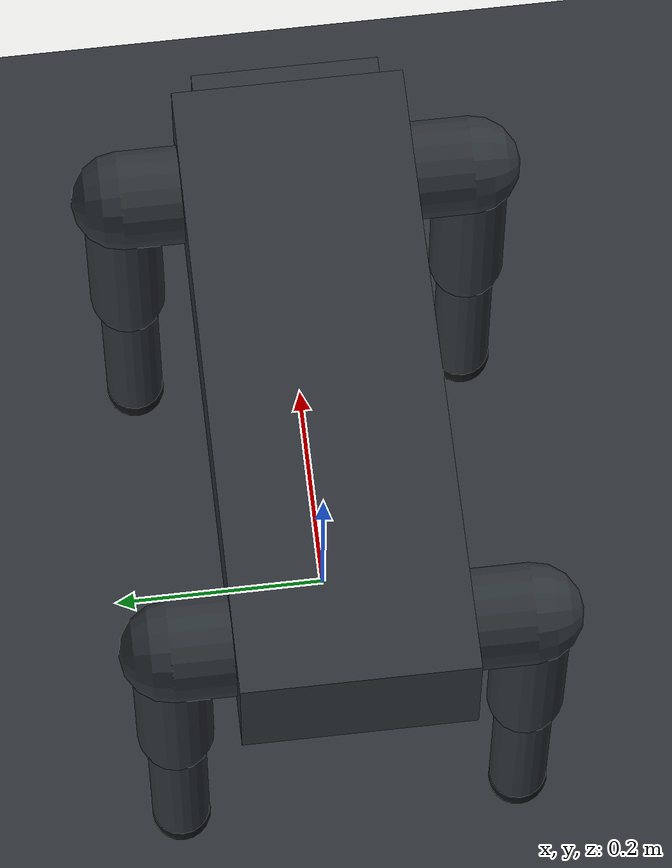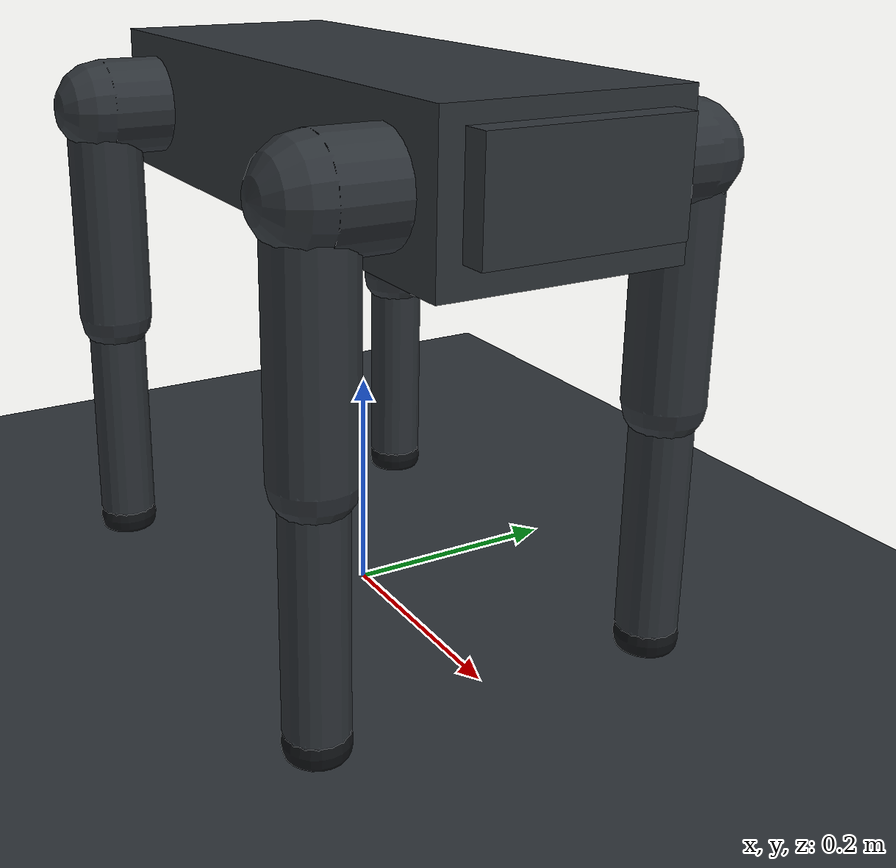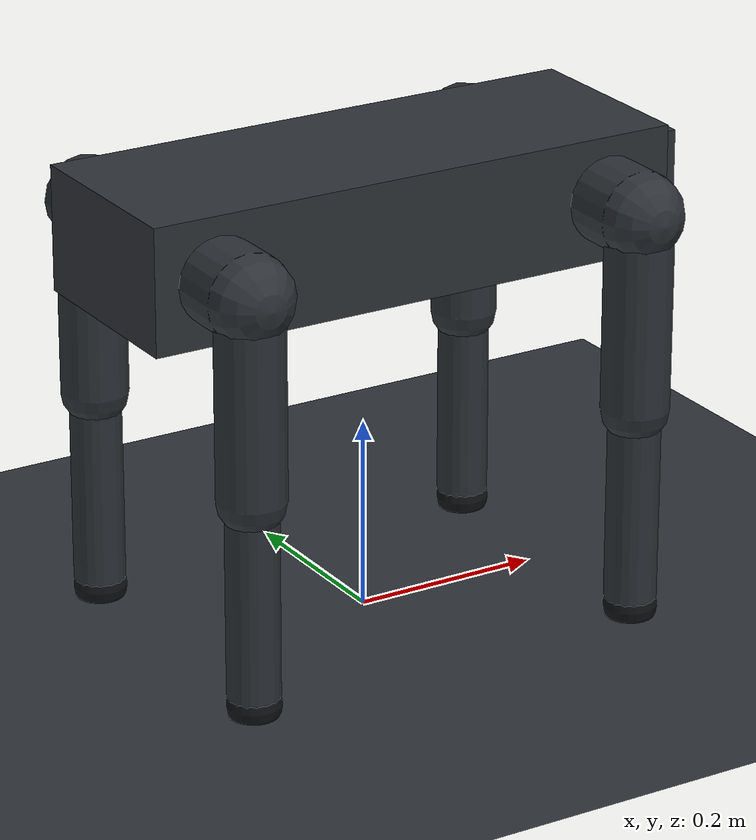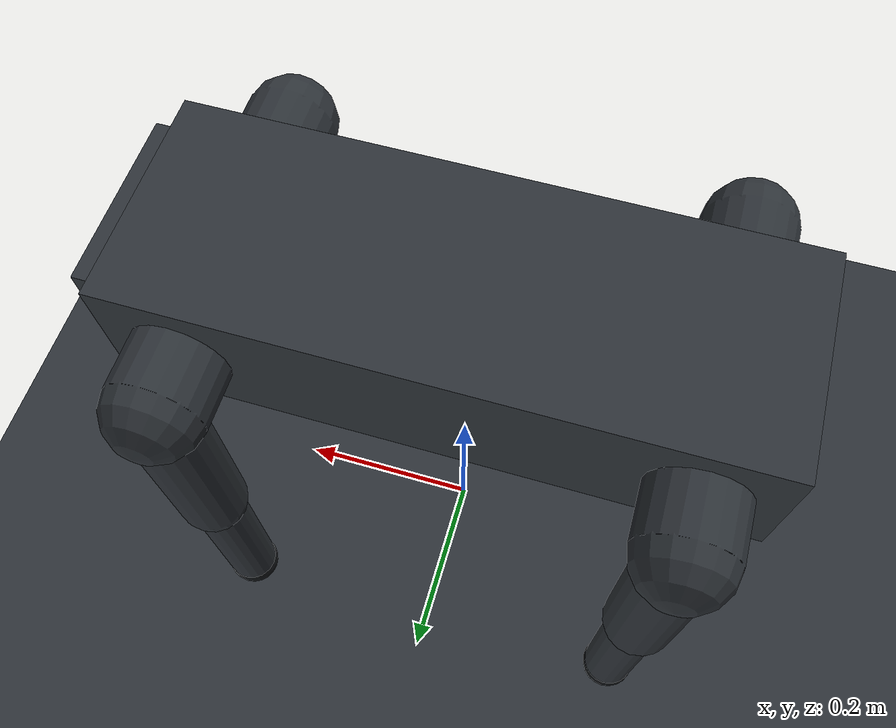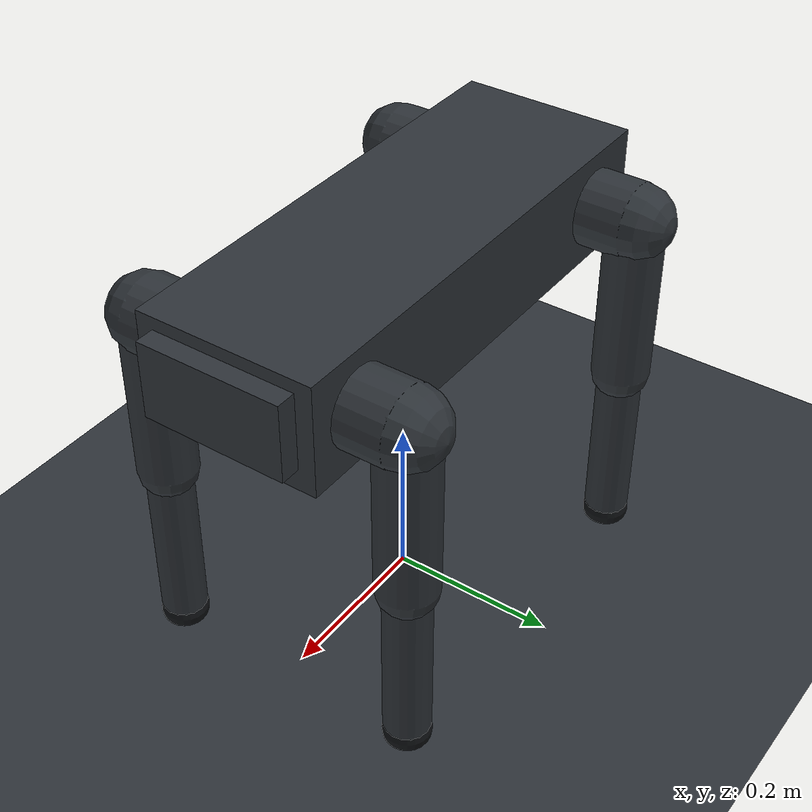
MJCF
<mujoco model="unitree_go2_simplified">
  <compiler angle="radian" autolimits="true"/>
  <option timestep="0.002" gravity="0 0 -9.81" integrator="implicitfast" iterations="50"/>

  <default>
    <joint damping="0.8" armature="0.02" frictionloss="0.02"/>
    <geom condim="4" friction="0.9 0.1 0.01" density="850" rgba="0.18 0.20 0.22 1"/>
    <position kp="55" kv="4" ctrllimited="true" forcelimited="true" ctrlrange="-3 3" forcerange="-35 35"/>
    <default class="hip">
      <joint type="hinge" axis="1 0 0" range="-0.8 0.8"/>
    </default>
    <default class="thigh">
      <joint type="hinge" axis="0 1 0" range="-1.6 1.6"/>
    </default>
    <default class="calf">
      <joint type="hinge" axis="0 1 0" range="-2.7 -0.25"/>
    </default>
    <default class="foot">
      <geom type="sphere" size="0.028" density="500" rgba="0.06 0.07 0.08 1"/>
    </default>
  </default>

  <visual>
    <headlight ambient="0.35 0.35 0.35" diffuse="0.8 0.8 0.8" specular="0.2 0.2 0.2"/>
    <rgba haze="0.12 0.18 0.22 1"/>
  </visual>

  <asset>
    <texture name="grid" type="2d" builtin="checker" rgb1="0.16 0.19 0.20" rgb2="0.10 0.12 0.13" width="512" height="512"/>
    <material name="floor" texture="grid" texrepeat="8 8" reflectance="0.1"/>
    <material name="shell" rgba="0.78 0.82 0.84 1"/>
    <material name="joint" rgba="0.08 0.10 0.11 1"/>
    <material name="accent" rgba="0.95 0.45 0.08 1"/>
  </asset>

  <worldbody>
    <light pos="0 -2 3" dir="0 0.5 -1" directional="true"/>
    <geom name="ground" type="plane" size="5 5 0.05" density="0" material="floor"/>

    <body name="base" pos="0 0 0.43">
      <freejoint/>
      <geom name="trunk" type="box" size="0.29 0.105 0.065" material="shell"/>
      <geom name="front_panel" type="box" pos="0.295 0 0.005" size="0.018 0.085 0.045" material="accent"/>
      <site name="imu" size="0.01" rgba="0 1 0 1"/>

      <body name="FL_hip" pos="0.22 0.105 0">
        <joint name="FL_hip_joint" class="hip"/>
        <geom type="capsule" fromto="0 0 0 0 0.055 0" size="0.045" material="joint"/>
        <body name="FL_thigh" pos="0 0.055 0">
          <joint name="FL_thigh_joint" class="thigh"/>
          <geom type="capsule" fromto="0 0 0 0 0 -0.205" size="0.035" material="shell"/>
          <body name="FL_calf" pos="0 0 -0.205">
            <joint name="FL_calf_joint" class="calf"/>
            <geom type="capsule" fromto="0 0 0 0 0 -0.205" size="0.027" material="joint"/>
            <geom name="FL_foot" class="foot" pos="0 0 -0.215"/>
          </body>
        </body>
      </body>

      <body name="FR_hip" pos="0.22 -0.105 0">
        <joint name="FR_hip_joint" class="hip"/>
        <geom type="capsule" fromto="0 0 0 0 -0.055 0" size="0.045" material="joint"/>
        <body name="FR_thigh" pos="0 -0.055 0">
          <joint name="FR_thigh_joint" class="thigh"/>
          <geom type="capsule" fromto="0 0 0 0 0 -0.205" size="0.035" material="shell"/>
          <body name="FR_calf" pos="0 0 -0.205">
            <joint name="FR_calf_joint" class="calf"/>
            <geom type="capsule" fromto="0 0 0 0 0 -0.205" size="0.027" material="joint"/>
            <geom name="FR_foot" class="foot" pos="0 0 -0.215"/>
          </body>
        </body>
      </body>

      <body name="RL_hip" pos="-0.22 0.105 0">
        <joint name="RL_hip_joint" class="hip"/>
        <geom type="capsule" fromto="0 0 0 0 0.055 0" size="0.045" material="joint"/>
        <body name="RL_thigh" pos="0 0.055 0">
          <joint name="RL_thigh_joint" class="thigh"/>
          <geom type="capsule" fromto="0 0 0 0 0 -0.205" size="0.035" material="shell"/>
          <body name="RL_calf" pos="0 0 -0.205">
            <joint name="RL_calf_joint" class="calf"/>
            <geom type="capsule" fromto="0 0 0 0 0 -0.205" size="0.027" material="joint"/>
            <geom name="RL_foot" class="foot" pos="0 0 -0.215"/>
          </body>
        </body>
      </body>

      <body name="RR_hip" pos="-0.22 -0.105 0">
        <joint name="RR_hip_joint" class="hip"/>
        <geom type="capsule" fromto="0 0 0 0 -0.055 0" size="0.045" material="joint"/>
        <body name="RR_thigh" pos="0 -0.055 0">
          <joint name="RR_thigh_joint" class="thigh"/>
          <geom type="capsule" fromto="0 0 0 0 0 -0.205" size="0.035" material="shell"/>
          <body name="RR_calf" pos="0 0 -0.205">
            <joint name="RR_calf_joint" class="calf"/>
            <geom type="capsule" fromto="0 0 0 0 0 -0.205" size="0.027" material="joint"/>
            <geom name="RR_foot" class="foot" pos="0 0 -0.215"/>
          </body>
        </body>
      </body>
    </body>
  </worldbody>

  <actuator>
    <position name="FL_hip" joint="FL_hip_joint"/><position name="FL_thigh" joint="FL_thigh_joint"/><position name="FL_calf" joint="FL_calf_joint"/>
    <position name="FR_hip" joint="FR_hip_joint"/><position name="FR_thigh" joint="FR_thigh_joint"/><position name="FR_calf" joint="FR_calf_joint"/>
    <position name="RL_hip" joint="RL_hip_joint"/><position name="RL_thigh" joint="RL_thigh_joint"/><position name="RL_calf" joint="RL_calf_joint"/>
    <position name="RR_hip" joint="RR_hip_joint"/><position name="RR_thigh" joint="RR_thigh_joint"/><position name="RR_calf" joint="RR_calf_joint"/>
  </actuator>

  <keyframe>
    <key name="stand" qpos="0 0 0.43 1 0 0 0 0.10 0.72 -1.42 -0.10 0.72 -1.42 0.10 0.72 -1.42 -0.10 0.72 -1.42" ctrl="0.10 0.72 -1.42 -0.10 0.72 -1.42 0.10 0.72 -1.42 -0.10 0.72 -1.42"/>
  </keyframe>
</mujoco>
